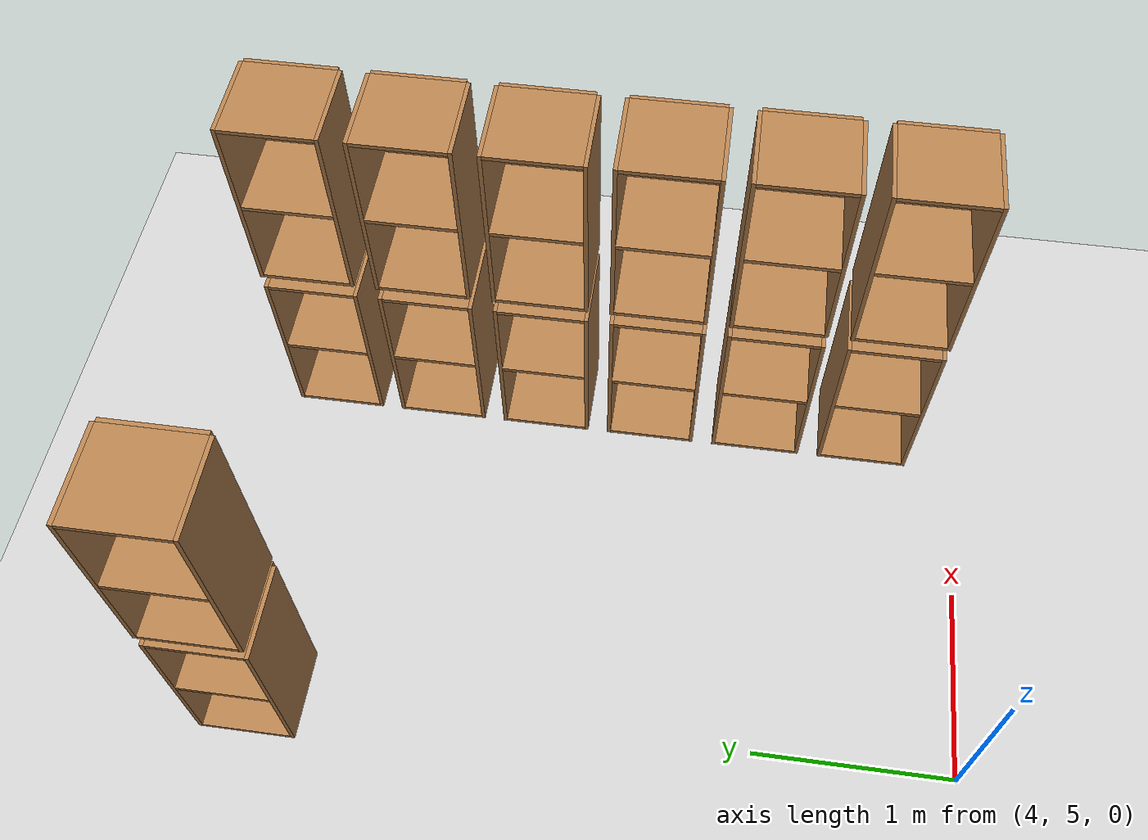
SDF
<sdf version="1.7">
 <world name="default">
  <model name="ground_plane">
   <static>1</static>
   <link name="link">
    <collision name="collision">
     <geometry><plane><normal>0 0 1</normal><size>100 100</size></plane></geometry>
     <surface><friction><ode><mu>100</mu><mu2>50</mu2></ode></friction></surface>
    </collision>
    <visual name="visual">
     <cast_shadows>0</cast_shadows>
     <geometry><plane><normal>0 0 1</normal><size>100 100</size></plane></geometry>
     <material>
      <script><uri>file://media/materials/scripts/gazebo.material</uri><name>Gazebo/Grey</name></script>
     </material>
    </visual>
   </link>
  </model>
  <model name="cabinet_11">
   <static>1</static>
   <link name="cabinet_bottom_plate">
    <inertial>
     <pose>0 0 -1 0 -0 0</pose>
     <inertia><ixx>2.05</ixx><ixy>0</ixy><ixz>0</ixz><iyy>2.05</iyy><iyz>0</iyz><izz>2.05</izz></inertia>
     <mass>25</mass>
    </inertial>
    <collision name="cabinet_bottom_plate_geom">
     <pose>0 0 0.01 0 -0 0</pose>
     <geometry><box><size>0.45 0.45 0.02</size></box></geometry>
    </collision>
    <visual name="cabinet_bottom_plate_geom_visual">
     <pose>0 0 0.01 0 -0 0</pose>
     <geometry><box><size>0.45 0.45 0.02</size></box></geometry>
     <material>
      <script><uri>file://media/materials/scripts/gazebo.material</uri><name>Gazebo/Wood</name></script>
     </material>
    </visual>
    <collision name="cabinet_bottom_plate_geom_cabinet_back_plate">
     <pose>0.235 0 0.51 0 -0 0</pose>
     <geometry><box><size>0.02 0.45 1.02</size></box></geometry>
    </collision>
    <visual name="cabinet_bottom_plate_geom_cabinet_back_plate_visual">
     <pose>0.235 0 0.51 0 -0 0</pose>
     <geometry><box><size>0.02 0.45 1.02</size></box></geometry>
     <material>
      <script><uri>file://media/materials/scripts/gazebo.material</uri><name>Gazebo/Wood</name></script>
     </material>
    </visual>
    <collision name="cabinet_bottom_plate_geom_cabinet_left_plate">
     <pose>0 0.235 0.51 0 -0 0</pose>
     <geometry><box><size>0.45 0.02 1.02</size></box></geometry>
    </collision>
    <visual name="cabinet_bottom_plate_geom_cabinet_left_plate_visual">
     <pose>0 0.235 0.51 0 -0 0</pose>
     <geometry><box><size>0.45 0.02 1.02</size></box></geometry>
     <material>
      <script><uri>file://media/materials/scripts/gazebo.material</uri><name>Gazebo/Wood</name></script>
     </material>
    </visual>
    <collision name="cabinet_bottom_plate_geom_cabinet_middle_plate">
     <pose>0 0 0.51 0 -0 0</pose>
     <geometry><box><size>0.45 0.45 0.02</size></box></geometry>
    </collision>
    <visual name="cabinet_bottom_plate_geom_cabinet_middle_plate_visual">
     <pose>0 0 0.51 0 -0 0</pose>
     <geometry><box><size>0.45 0.45 0.02</size></box></geometry>
     <material>
      <script><uri>file://media/materials/scripts/gazebo.material</uri><name>Gazebo/Wood</name></script>
     </material>
    </visual>
    <collision name="cabinet_bottom_plate_geom_cabinet_right_plate">
     <pose>0 -0.235 0.51 0 -0 0</pose>
     <geometry><box><size>0.45 0.02 1.02</size></box></geometry>
    </collision>
    <visual name="cabinet_bottom_plate_geom_cabinet_right_plate_visual">
     <pose>0 -0.235 0.51 0 -0 0</pose>
     <geometry><box><size>0.45 0.02 1.02</size></box></geometry>
     <material>
      <script><uri>file://media/materials/scripts/gazebo.material</uri><name>Gazebo/Wood</name></script>
     </material>
    </visual>
    <collision name="cabinet_bottom_plate_geom_cabinet_top_plate">
     <pose>0 0 1.01 0 -0 0</pose>
     <geometry><box><size>0.45 0.45 0.02</size></box></geometry>
    </collision>
    <visual name="cabinet_bottom_plate_geom_cabinet_top_plate_visual">
     <pose>0 0 1.01 0 -0 0</pose>
     <geometry><box><size>0.45 0.45 0.02</size></box></geometry>
     <material>
      <script><uri>file://media/materials/scripts/gazebo.material</uri><name>Gazebo/Wood</name></script>
     </material>
    </visual>
   </link>
   <pose>4 8.5 0 0 -0 0</pose>
  </model>
  <model name="cabinet_62">
   <static>1</static>
   <link name="cabinet_bottom_plate">
    <inertial>
     <pose>0 0 -1 0 -0 0</pose>
     <inertia><ixx>2.05</ixx><ixy>0</ixy><ixz>0</ixz><iyy>2.05</iyy><iyz>0</iyz><izz>2.05</izz></inertia>
     <mass>25</mass>
    </inertial>
    <collision name="cabinet_bottom_plate_geom">
     <pose>0 0 0.01 0 -0 0</pose>
     <geometry><box><size>0.45 0.45 0.02</size></box></geometry>
    </collision>
    <visual name="cabinet_bottom_plate_geom_visual">
     <pose>0 0 0.01 0 -0 0</pose>
     <geometry><box><size>0.45 0.45 0.02</size></box></geometry>
     <material>
      <script><uri>file://media/materials/scripts/gazebo.material</uri><name>Gazebo/Wood</name></script>
     </material>
    </visual>
    <collision name="cabinet_bottom_plate_geom_cabinet_back_plate">
     <pose>0.235 0 0.51 0 -0 0</pose>
     <geometry><box><size>0.02 0.45 1.02</size></box></geometry>
    </collision>
    <visual name="cabinet_bottom_plate_geom_cabinet_back_plate_visual">
     <pose>0.235 0 0.51 0 -0 0</pose>
     <geometry><box><size>0.02 0.45 1.02</size></box></geometry>
     <material>
      <script><uri>file://media/materials/scripts/gazebo.material</uri><name>Gazebo/Wood</name></script>
     </material>
    </visual>
    <collision name="cabinet_bottom_plate_geom_cabinet_left_plate">
     <pose>0 0.235 0.51 0 -0 0</pose>
     <geometry><box><size>0.45 0.02 1.02</size></box></geometry>
    </collision>
    <visual name="cabinet_bottom_plate_geom_cabinet_left_plate_visual">
     <pose>0 0.235 0.51 0 -0 0</pose>
     <geometry><box><size>0.45 0.02 1.02</size></box></geometry>
     <material>
      <script><uri>file://media/materials/scripts/gazebo.material</uri><name>Gazebo/Wood</name></script>
     </material>
    </visual>
    <collision name="cabinet_bottom_plate_geom_cabinet_middle_plate">
     <pose>0 0 0.51 0 -0 0</pose>
     <geometry><box><size>0.45 0.45 0.02</size></box></geometry>
    </collision>
    <visual name="cabinet_bottom_plate_geom_cabinet_middle_plate_visual">
     <pose>0 0 0.51 0 -0 0</pose>
     <geometry><box><size>0.45 0.45 0.02</size></box></geometry>
     <material>
      <script><uri>file://media/materials/scripts/gazebo.material</uri><name>Gazebo/Wood</name></script>
     </material>
    </visual>
    <collision name="cabinet_bottom_plate_geom_cabinet_right_plate">
     <pose>0 -0.235 0.51 0 -0 0</pose>
     <geometry><box><size>0.45 0.02 1.02</size></box></geometry>
    </collision>
    <visual name="cabinet_bottom_plate_geom_cabinet_right_plate_visual">
     <pose>0 -0.235 0.51 0 -0 0</pose>
     <geometry><box><size>0.45 0.02 1.02</size></box></geometry>
     <material>
      <script><uri>file://media/materials/scripts/gazebo.material</uri><name>Gazebo/Wood</name></script>
     </material>
    </visual>
    <collision name="cabinet_bottom_plate_geom_cabinet_top_plate">
     <pose>0 0 1.01 0 -0 0</pose>
     <geometry><box><size>0.45 0.45 0.02</size></box></geometry>
    </collision>
    <visual name="cabinet_bottom_plate_geom_cabinet_top_plate_visual">
     <pose>0 0 1.01 0 -0 0</pose>
     <geometry><box><size>0.45 0.45 0.02</size></box></geometry>
     <material>
      <script><uri>file://media/materials/scripts/gazebo.material</uri><name>Gazebo/Wood</name></script>
     </material>
    </visual>
   </link>
   <pose>6 5.5 0 0 -0 0</pose>
  </model>
  <model name="cabinet_63">
   <static>1</static>
   <link name="cabinet_bottom_plate">
    <inertial>
     <pose>0 0 -1 0 -0 0</pose>
     <inertia><ixx>2.05</ixx><ixy>0</ixy><ixz>0</ixz><iyy>2.05</iyy><iyz>0</iyz><izz>2.05</izz></inertia>
     <mass>25</mass>
    </inertial>
    <collision name="cabinet_bottom_plate_geom">
     <pose>0 0 0.01 0 -0 0</pose>
     <geometry><box><size>0.45 0.45 0.02</size></box></geometry>
    </collision>
    <visual name="cabinet_bottom_plate_geom_visual">
     <pose>0 0 0.01 0 -0 0</pose>
     <geometry><box><size>0.45 0.45 0.02</size></box></geometry>
     <material>
      <script><uri>file://media/materials/scripts/gazebo.material</uri><name>Gazebo/Wood</name></script>
     </material>
    </visual>
    <collision name="cabinet_bottom_plate_geom_cabinet_back_plate">
     <pose>0.235 0 0.51 0 -0 0</pose>
     <geometry><box><size>0.02 0.45 1.02</size></box></geometry>
    </collision>
    <visual name="cabinet_bottom_plate_geom_cabinet_back_plate_visual">
     <pose>0.235 0 0.51 0 -0 0</pose>
     <geometry><box><size>0.02 0.45 1.02</size></box></geometry>
     <material>
      <script><uri>file://media/materials/scripts/gazebo.material</uri><name>Gazebo/Wood</name></script>
     </material>
    </visual>
    <collision name="cabinet_bottom_plate_geom_cabinet_left_plate">
     <pose>0 0.235 0.51 0 -0 0</pose>
     <geometry><box><size>0.45 0.02 1.02</size></box></geometry>
    </collision>
    <visual name="cabinet_bottom_plate_geom_cabinet_left_plate_visual">
     <pose>0 0.235 0.51 0 -0 0</pose>
     <geometry><box><size>0.45 0.02 1.02</size></box></geometry>
     <material>
      <script><uri>file://media/materials/scripts/gazebo.material</uri><name>Gazebo/Wood</name></script>
     </material>
    </visual>
    <collision name="cabinet_bottom_plate_geom_cabinet_middle_plate">
     <pose>0 0 0.51 0 -0 0</pose>
     <geometry><box><size>0.45 0.45 0.02</size></box></geometry>
    </collision>
    <visual name="cabinet_bottom_plate_geom_cabinet_middle_plate_visual">
     <pose>0 0 0.51 0 -0 0</pose>
     <geometry><box><size>0.45 0.45 0.02</size></box></geometry>
     <material>
      <script><uri>file://media/materials/scripts/gazebo.material</uri><name>Gazebo/Wood</name></script>
     </material>
    </visual>
    <collision name="cabinet_bottom_plate_geom_cabinet_right_plate">
     <pose>0 -0.235 0.51 0 -0 0</pose>
     <geometry><box><size>0.45 0.02 1.02</size></box></geometry>
    </collision>
    <visual name="cabinet_bottom_plate_geom_cabinet_right_plate_visual">
     <pose>0 -0.235 0.51 0 -0 0</pose>
     <geometry><box><size>0.45 0.02 1.02</size></box></geometry>
     <material>
      <script><uri>file://media/materials/scripts/gazebo.material</uri><name>Gazebo/Wood</name></script>
     </material>
    </visual>
    <collision name="cabinet_bottom_plate_geom_cabinet_top_plate">
     <pose>0 0 1.01 0 -0 0</pose>
     <geometry><box><size>0.45 0.45 0.02</size></box></geometry>
    </collision>
    <visual name="cabinet_bottom_plate_geom_cabinet_top_plate_visual">
     <pose>0 0 1.01 0 -0 0</pose>
     <geometry><box><size>0.45 0.45 0.02</size></box></geometry>
     <material>
      <script><uri>file://media/materials/scripts/gazebo.material</uri><name>Gazebo/Wood</name></script>
     </material>
    </visual>
   </link>
   <pose>6 6.1 0 0 -0 0</pose>
  </model>
  <model name="cabinet_64">
   <static>1</static>
   <link name="cabinet_bottom_plate">
    <inertial>
     <pose>0 0 -1 0 -0 0</pose>
     <inertia><ixx>2.05</ixx><ixy>0</ixy><ixz>0</ixz><iyy>2.05</iyy><iyz>0</iyz><izz>2.05</izz></inertia>
     <mass>25</mass>
    </inertial>
    <collision name="cabinet_bottom_plate_geom">
     <pose>0 0 0.01 0 -0 0</pose>
     <geometry><box><size>0.45 0.45 0.02</size></box></geometry>
    </collision>
    <visual name="cabinet_bottom_plate_geom_visual">
     <pose>0 0 0.01 0 -0 0</pose>
     <geometry><box><size>0.45 0.45 0.02</size></box></geometry>
     <material>
      <script><uri>file://media/materials/scripts/gazebo.material</uri><name>Gazebo/Wood</name></script>
     </material>
    </visual>
    <collision name="cabinet_bottom_plate_geom_cabinet_back_plate">
     <pose>0.235 0 0.51 0 -0 0</pose>
     <geometry><box><size>0.02 0.45 1.02</size></box></geometry>
    </collision>
    <visual name="cabinet_bottom_plate_geom_cabinet_back_plate_visual">
     <pose>0.235 0 0.51 0 -0 0</pose>
     <geometry><box><size>0.02 0.45 1.02</size></box></geometry>
     <material>
      <script><uri>file://media/materials/scripts/gazebo.material</uri><name>Gazebo/Wood</name></script>
     </material>
    </visual>
    <collision name="cabinet_bottom_plate_geom_cabinet_left_plate">
     <pose>0 0.235 0.51 0 -0 0</pose>
     <geometry><box><size>0.45 0.02 1.02</size></box></geometry>
    </collision>
    <visual name="cabinet_bottom_plate_geom_cabinet_left_plate_visual">
     <pose>0 0.235 0.51 0 -0 0</pose>
     <geometry><box><size>0.45 0.02 1.02</size></box></geometry>
     <material>
      <script><uri>file://media/materials/scripts/gazebo.material</uri><name>Gazebo/Wood</name></script>
     </material>
    </visual>
    <collision name="cabinet_bottom_plate_geom_cabinet_middle_plate">
     <pose>0 0 0.51 0 -0 0</pose>
     <geometry><box><size>0.45 0.45 0.02</size></box></geometry>
    </collision>
    <visual name="cabinet_bottom_plate_geom_cabinet_middle_plate_visual">
     <pose>0 0 0.51 0 -0 0</pose>
     <geometry><box><size>0.45 0.45 0.02</size></box></geometry>
     <material>
      <script><uri>file://media/materials/scripts/gazebo.material</uri><name>Gazebo/Wood</name></script>
     </material>
    </visual>
    <collision name="cabinet_bottom_plate_geom_cabinet_right_plate">
     <pose>0 -0.235 0.51 0 -0 0</pose>
     <geometry><box><size>0.45 0.02 1.02</size></box></geometry>
    </collision>
    <visual name="cabinet_bottom_plate_geom_cabinet_right_plate_visual">
     <pose>0 -0.235 0.51 0 -0 0</pose>
     <geometry><box><size>0.45 0.02 1.02</size></box></geometry>
     <material>
      <script><uri>file://media/materials/scripts/gazebo.material</uri><name>Gazebo/Wood</name></script>
     </material>
    </visual>
    <collision name="cabinet_bottom_plate_geom_cabinet_top_plate">
     <pose>0 0 1.01 0 -0 0</pose>
     <geometry><box><size>0.45 0.45 0.02</size></box></geometry>
    </collision>
    <visual name="cabinet_bottom_plate_geom_cabinet_top_plate_visual">
     <pose>0 0 1.01 0 -0 0</pose>
     <geometry><box><size>0.45 0.45 0.02</size></box></geometry>
     <material>
      <script><uri>file://media/materials/scripts/gazebo.material</uri><name>Gazebo/Wood</name></script>
     </material>
    </visual>
   </link>
   <pose>6 6.7 0 0 -0 0</pose>
  </model>
  <model name="cabinet_65">
   <static>1</static>
   <link name="cabinet_bottom_plate">
    <inertial>
     <pose>0 0 -1 0 -0 0</pose>
     <inertia><ixx>2.05</ixx><ixy>0</ixy><ixz>0</ixz><iyy>2.05</iyy><iyz>0</iyz><izz>2.05</izz></inertia>
     <mass>25</mass>
    </inertial>
    <collision name="cabinet_bottom_plate_geom">
     <pose>0 0 0.01 0 -0 0</pose>
     <geometry><box><size>0.45 0.45 0.02</size></box></geometry>
    </collision>
    <visual name="cabinet_bottom_plate_geom_visual">
     <pose>0 0 0.01 0 -0 0</pose>
     <geometry><box><size>0.45 0.45 0.02</size></box></geometry>
     <material>
      <script><uri>file://media/materials/scripts/gazebo.material</uri><name>Gazebo/Wood</name></script>
     </material>
    </visual>
    <collision name="cabinet_bottom_plate_geom_cabinet_back_plate">
     <pose>0.235 0 0.51 0 -0 0</pose>
     <geometry><box><size>0.02 0.45 1.02</size></box></geometry>
    </collision>
    <visual name="cabinet_bottom_plate_geom_cabinet_back_plate_visual">
     <pose>0.235 0 0.51 0 -0 0</pose>
     <geometry><box><size>0.02 0.45 1.02</size></box></geometry>
     <material>
      <script><uri>file://media/materials/scripts/gazebo.material</uri><name>Gazebo/Wood</name></script>
     </material>
    </visual>
    <collision name="cabinet_bottom_plate_geom_cabinet_left_plate">
     <pose>0 0.235 0.51 0 -0 0</pose>
     <geometry><box><size>0.45 0.02 1.02</size></box></geometry>
    </collision>
    <visual name="cabinet_bottom_plate_geom_cabinet_left_plate_visual">
     <pose>0 0.235 0.51 0 -0 0</pose>
     <geometry><box><size>0.45 0.02 1.02</size></box></geometry>
     <material>
      <script><uri>file://media/materials/scripts/gazebo.material</uri><name>Gazebo/Wood</name></script>
     </material>
    </visual>
    <collision name="cabinet_bottom_plate_geom_cabinet_middle_plate">
     <pose>0 0 0.51 0 -0 0</pose>
     <geometry><box><size>0.45 0.45 0.02</size></box></geometry>
    </collision>
    <visual name="cabinet_bottom_plate_geom_cabinet_middle_plate_visual">
     <pose>0 0 0.51 0 -0 0</pose>
     <geometry><box><size>0.45 0.45 0.02</size></box></geometry>
     <material>
      <script><uri>file://media/materials/scripts/gazebo.material</uri><name>Gazebo/Wood</name></script>
     </material>
    </visual>
    <collision name="cabinet_bottom_plate_geom_cabinet_right_plate">
     <pose>0 -0.235 0.51 0 -0 0</pose>
     <geometry><box><size>0.45 0.02 1.02</size></box></geometry>
    </collision>
    <visual name="cabinet_bottom_plate_geom_cabinet_right_plate_visual">
     <pose>0 -0.235 0.51 0 -0 0</pose>
     <geometry><box><size>0.45 0.02 1.02</size></box></geometry>
     <material>
      <script><uri>file://media/materials/scripts/gazebo.material</uri><name>Gazebo/Wood</name></script>
     </material>
    </visual>
    <collision name="cabinet_bottom_plate_geom_cabinet_top_plate">
     <pose>0 0 1.01 0 -0 0</pose>
     <geometry><box><size>0.45 0.45 0.02</size></box></geometry>
    </collision>
    <visual name="cabinet_bottom_plate_geom_cabinet_top_plate_visual">
     <pose>0 0 1.01 0 -0 0</pose>
     <geometry><box><size>0.45 0.45 0.02</size></box></geometry>
     <material>
      <script><uri>file://media/materials/scripts/gazebo.material</uri><name>Gazebo/Wood</name></script>
     </material>
    </visual>
   </link>
   <pose>6 7.3 0 0 -0 0</pose>
  </model>
  <model name="cabinet_66">
   <static>1</static>
   <link name="cabinet_bottom_plate">
    <inertial>
     <pose>0 0 -1 0 -0 0</pose>
     <inertia><ixx>2.05</ixx><ixy>0</ixy><ixz>0</ixz><iyy>2.05</iyy><iyz>0</iyz><izz>2.05</izz></inertia>
     <mass>25</mass>
    </inertial>
    <collision name="cabinet_bottom_plate_geom">
     <pose>0 0 0.01 0 -0 0</pose>
     <geometry><box><size>0.45 0.45 0.02</size></box></geometry>
    </collision>
    <visual name="cabinet_bottom_plate_geom_visual">
     <pose>0 0 0.01 0 -0 0</pose>
     <geometry><box><size>0.45 0.45 0.02</size></box></geometry>
     <material>
      <script><uri>file://media/materials/scripts/gazebo.material</uri><name>Gazebo/Wood</name></script>
     </material>
    </visual>
    <collision name="cabinet_bottom_plate_geom_cabinet_back_plate">
     <pose>0.235 0 0.51 0 -0 0</pose>
     <geometry><box><size>0.02 0.45 1.02</size></box></geometry>
    </collision>
    <visual name="cabinet_bottom_plate_geom_cabinet_back_plate_visual">
     <pose>0.235 0 0.51 0 -0 0</pose>
     <geometry><box><size>0.02 0.45 1.02</size></box></geometry>
     <material>
      <script><uri>file://media/materials/scripts/gazebo.material</uri><name>Gazebo/Wood</name></script>
     </material>
    </visual>
    <collision name="cabinet_bottom_plate_geom_cabinet_left_plate">
     <pose>0 0.235 0.51 0 -0 0</pose>
     <geometry><box><size>0.45 0.02 1.02</size></box></geometry>
    </collision>
    <visual name="cabinet_bottom_plate_geom_cabinet_left_plate_visual">
     <pose>0 0.235 0.51 0 -0 0</pose>
     <geometry><box><size>0.45 0.02 1.02</size></box></geometry>
     <material>
      <script><uri>file://media/materials/scripts/gazebo.material</uri><name>Gazebo/Wood</name></script>
     </material>
    </visual>
    <collision name="cabinet_bottom_plate_geom_cabinet_middle_plate">
     <pose>0 0 0.51 0 -0 0</pose>
     <geometry><box><size>0.45 0.45 0.02</size></box></geometry>
    </collision>
    <visual name="cabinet_bottom_plate_geom_cabinet_middle_plate_visual">
     <pose>0 0 0.51 0 -0 0</pose>
     <geometry><box><size>0.45 0.45 0.02</size></box></geometry>
     <material>
      <script><uri>file://media/materials/scripts/gazebo.material</uri><name>Gazebo/Wood</name></script>
     </material>
    </visual>
    <collision name="cabinet_bottom_plate_geom_cabinet_right_plate">
     <pose>0 -0.235 0.51 0 -0 0</pose>
     <geometry><box><size>0.45 0.02 1.02</size></box></geometry>
    </collision>
    <visual name="cabinet_bottom_plate_geom_cabinet_right_plate_visual">
     <pose>0 -0.235 0.51 0 -0 0</pose>
     <geometry><box><size>0.45 0.02 1.02</size></box></geometry>
     <material>
      <script><uri>file://media/materials/scripts/gazebo.material</uri><name>Gazebo/Wood</name></script>
     </material>
    </visual>
    <collision name="cabinet_bottom_plate_geom_cabinet_top_plate">
     <pose>0 0 1.01 0 -0 0</pose>
     <geometry><box><size>0.45 0.45 0.02</size></box></geometry>
    </collision>
    <visual name="cabinet_bottom_plate_geom_cabinet_top_plate_visual">
     <pose>0 0 1.01 0 -0 0</pose>
     <geometry><box><size>0.45 0.45 0.02</size></box></geometry>
     <material>
      <script><uri>file://media/materials/scripts/gazebo.material</uri><name>Gazebo/Wood</name></script>
     </material>
    </visual>
   </link>
   <pose>6 7.9 0 0 -0 0</pose>
  </model>
  <model name="cabinet_67">
   <static>1</static>
   <link name="cabinet_bottom_plate">
    <inertial>
     <pose>0 0 -1 0 -0 0</pose>
     <inertia><ixx>2.05</ixx><ixy>0</ixy><ixz>0</ixz><iyy>2.05</iyy><iyz>0</iyz><izz>2.05</izz></inertia>
     <mass>25</mass>
    </inertial>
    <collision name="cabinet_bottom_plate_geom">
     <pose>0 0 0.01 0 -0 0</pose>
     <geometry><box><size>0.45 0.45 0.02</size></box></geometry>
    </collision>
    <visual name="cabinet_bottom_plate_geom_visual">
     <pose>0 0 0.01 0 -0 0</pose>
     <geometry><box><size>0.45 0.45 0.02</size></box></geometry>
     <material>
      <script><uri>file://media/materials/scripts/gazebo.material</uri><name>Gazebo/Wood</name></script>
     </material>
    </visual>
    <collision name="cabinet_bottom_plate_geom_cabinet_back_plate">
     <pose>0.235 0 0.51 0 -0 0</pose>
     <geometry><box><size>0.02 0.45 1.02</size></box></geometry>
    </collision>
    <visual name="cabinet_bottom_plate_geom_cabinet_back_plate_visual">
     <pose>0.235 0 0.51 0 -0 0</pose>
     <geometry><box><size>0.02 0.45 1.02</size></box></geometry>
     <material>
      <script><uri>file://media/materials/scripts/gazebo.material</uri><name>Gazebo/Wood</name></script>
     </material>
    </visual>
    <collision name="cabinet_bottom_plate_geom_cabinet_left_plate">
     <pose>0 0.235 0.51 0 -0 0</pose>
     <geometry><box><size>0.45 0.02 1.02</size></box></geometry>
    </collision>
    <visual name="cabinet_bottom_plate_geom_cabinet_left_plate_visual">
     <pose>0 0.235 0.51 0 -0 0</pose>
     <geometry><box><size>0.45 0.02 1.02</size></box></geometry>
     <material>
      <script><uri>file://media/materials/scripts/gazebo.material</uri><name>Gazebo/Wood</name></script>
     </material>
    </visual>
    <collision name="cabinet_bottom_plate_geom_cabinet_middle_plate">
     <pose>0 0 0.51 0 -0 0</pose>
     <geometry><box><size>0.45 0.45 0.02</size></box></geometry>
    </collision>
    <visual name="cabinet_bottom_plate_geom_cabinet_middle_plate_visual">
     <pose>0 0 0.51 0 -0 0</pose>
     <geometry><box><size>0.45 0.45 0.02</size></box></geometry>
     <material>
      <script><uri>file://media/materials/scripts/gazebo.material</uri><name>Gazebo/Wood</name></script>
     </material>
    </visual>
    <collision name="cabinet_bottom_plate_geom_cabinet_right_plate">
     <pose>0 -0.235 0.51 0 -0 0</pose>
     <geometry><box><size>0.45 0.02 1.02</size></box></geometry>
    </collision>
    <visual name="cabinet_bottom_plate_geom_cabinet_right_plate_visual">
     <pose>0 -0.235 0.51 0 -0 0</pose>
     <geometry><box><size>0.45 0.02 1.02</size></box></geometry>
     <material>
      <script><uri>file://media/materials/scripts/gazebo.material</uri><name>Gazebo/Wood</name></script>
     </material>
    </visual>
    <collision name="cabinet_bottom_plate_geom_cabinet_top_plate">
     <pose>0 0 1.01 0 -0 0</pose>
     <geometry><box><size>0.45 0.45 0.02</size></box></geometry>
    </collision>
    <visual name="cabinet_bottom_plate_geom_cabinet_top_plate_visual">
     <pose>0 0 1.01 0 -0 0</pose>
     <geometry><box><size>0.45 0.45 0.02</size></box></geometry>
     <material>
      <script><uri>file://media/materials/scripts/gazebo.material</uri><name>Gazebo/Wood</name></script>
     </material>
    </visual>
   </link>
   <pose>6 8.5 0 0 -0 0</pose>
  </model>
  <model name="cabinet_68">
   <static>1</static>
   <link name="cabinet_bottom_plate">
    <inertial>
     <pose>0 0 -1 0 -0 0</pose>
     <inertia><ixx>2.05</ixx><ixy>0</ixy><ixz>0</ixz><iyy>2.05</iyy><iyz>0</iyz><izz>2.05</izz></inertia>
     <mass>25</mass>
    </inertial>
    <collision name="cabinet_bottom_plate_geom">
     <pose>0 0 0.01 0 -0 0</pose>
     <geometry><box><size>0.45 0.45 0.02</size></box></geometry>
    </collision>
    <visual name="cabinet_bottom_plate_geom_visual">
     <pose>0 0 0.01 0 -0 0</pose>
     <geometry><box><size>0.45 0.45 0.02</size></box></geometry>
     <material>
      <script><uri>file://media/materials/scripts/gazebo.material</uri><name>Gazebo/Wood</name></script>
     </material>
    </visual>
    <collision name="cabinet_bottom_plate_geom_cabinet_back_plate">
     <pose>0.235 0 0.51 0 -0 0</pose>
     <geometry><box><size>0.02 0.45 1.02</size></box></geometry>
    </collision>
    <visual name="cabinet_bottom_plate_geom_cabinet_back_plate_visual">
     <pose>0.235 0 0.51 0 -0 0</pose>
     <geometry><box><size>0.02 0.45 1.02</size></box></geometry>
     <material>
      <script><uri>file://media/materials/scripts/gazebo.material</uri><name>Gazebo/Wood</name></script>
     </material>
    </visual>
    <collision name="cabinet_bottom_plate_geom_cabinet_left_plate">
     <pose>0 0.235 0.51 0 -0 0</pose>
     <geometry><box><size>0.45 0.02 1.02</size></box></geometry>
    </collision>
    <visual name="cabinet_bottom_plate_geom_cabinet_left_plate_visual">
     <pose>0 0.235 0.51 0 -0 0</pose>
     <geometry><box><size>0.45 0.02 1.02</size></box></geometry>
     <material>
      <script><uri>file://media/materials/scripts/gazebo.material</uri><name>Gazebo/Wood</name></script>
     </material>
    </visual>
    <collision name="cabinet_bottom_plate_geom_cabinet_middle_plate">
     <pose>0 0 0.51 0 -0 0</pose>
     <geometry><box><size>0.45 0.45 0.02</size></box></geometry>
    </collision>
    <visual name="cabinet_bottom_plate_geom_cabinet_middle_plate_visual">
     <pose>0 0 0.51 0 -0 0</pose>
     <geometry><box><size>0.45 0.45 0.02</size></box></geometry>
     <material>
      <script><uri>file://media/materials/scripts/gazebo.material</uri><name>Gazebo/Wood</name></script>
     </material>
    </visual>
    <collision name="cabinet_bottom_plate_geom_cabinet_right_plate">
     <pose>0 -0.235 0.51 0 -0 0</pose>
     <geometry><box><size>0.45 0.02 1.02</size></box></geometry>
    </collision>
    <visual name="cabinet_bottom_plate_geom_cabinet_right_plate_visual">
     <pose>0 -0.235 0.51 0 -0 0</pose>
     <geometry><box><size>0.45 0.02 1.02</size></box></geometry>
     <material>
      <script><uri>file://media/materials/scripts/gazebo.material</uri><name>Gazebo/Wood</name></script>
     </material>
    </visual>
    <collision name="cabinet_bottom_plate_geom_cabinet_top_plate">
     <pose>0 0 1.01 0 -0 0</pose>
     <geometry><box><size>0.45 0.45 0.02</size></box></geometry>
    </collision>
    <visual name="cabinet_bottom_plate_geom_cabinet_top_plate_visual">
     <pose>0 0 1.01 0 -0 0</pose>
     <geometry><box><size>0.45 0.45 0.02</size></box></geometry>
     <material>
      <script><uri>file://media/materials/scripts/gazebo.material</uri><name>Gazebo/Wood</name></script>
     </material>
    </visual>
   </link>
   <pose>6 8.5 1.1 0 -0 0</pose>
  </model>
  <model name="cabinet_70">
   <static>1</static>
   <link name="cabinet_bottom_plate">
    <inertial>
     <pose>0 0 -1 0 -0 0</pose>
     <inertia><ixx>2.05</ixx><ixy>0</ixy><ixz>0</ixz><iyy>2.05</iyy><iyz>0</iyz><izz>2.05</izz></inertia>
     <mass>25</mass>
    </inertial>
    <collision name="cabinet_bottom_plate_geom">
     <pose>0 0 0.01 0 -0 0</pose>
     <geometry><box><size>0.45 0.45 0.02</size></box></geometry>
    </collision>
    <visual name="cabinet_bottom_plate_geom_visual">
     <pose>0 0 0.01 0 -0 0</pose>
     <geometry><box><size>0.45 0.45 0.02</size></box></geometry>
     <material>
      <script><uri>file://media/materials/scripts/gazebo.material</uri><name>Gazebo/Wood</name></script>
     </material>
    </visual>
    <collision name="cabinet_bottom_plate_geom_cabinet_back_plate">
     <pose>0.235 0 0.51 0 -0 0</pose>
     <geometry><box><size>0.02 0.45 1.02</size></box></geometry>
    </collision>
    <visual name="cabinet_bottom_plate_geom_cabinet_back_plate_visual">
     <pose>0.235 0 0.51 0 -0 0</pose>
     <geometry><box><size>0.02 0.45 1.02</size></box></geometry>
     <material>
      <script><uri>file://media/materials/scripts/gazebo.material</uri><name>Gazebo/Wood</name></script>
     </material>
    </visual>
    <collision name="cabinet_bottom_plate_geom_cabinet_left_plate">
     <pose>0 0.235 0.51 0 -0 0</pose>
     <geometry><box><size>0.45 0.02 1.02</size></box></geometry>
    </collision>
    <visual name="cabinet_bottom_plate_geom_cabinet_left_plate_visual">
     <pose>0 0.235 0.51 0 -0 0</pose>
     <geometry><box><size>0.45 0.02 1.02</size></box></geometry>
     <material>
      <script><uri>file://media/materials/scripts/gazebo.material</uri><name>Gazebo/Wood</name></script>
     </material>
    </visual>
    <collision name="cabinet_bottom_plate_geom_cabinet_middle_plate">
     <pose>0 0 0.51 0 -0 0</pose>
     <geometry><box><size>0.45 0.45 0.02</size></box></geometry>
    </collision>
    <visual name="cabinet_bottom_plate_geom_cabinet_middle_plate_visual">
     <pose>0 0 0.51 0 -0 0</pose>
     <geometry><box><size>0.45 0.45 0.02</size></box></geometry>
     <material>
      <script><uri>file://media/materials/scripts/gazebo.material</uri><name>Gazebo/Wood</name></script>
     </material>
    </visual>
    <collision name="cabinet_bottom_plate_geom_cabinet_right_plate">
     <pose>0 -0.235 0.51 0 -0 0</pose>
     <geometry><box><size>0.45 0.02 1.02</size></box></geometry>
    </collision>
    <visual name="cabinet_bottom_plate_geom_cabinet_right_plate_visual">
     <pose>0 -0.235 0.51 0 -0 0</pose>
     <geometry><box><size>0.45 0.02 1.02</size></box></geometry>
     <material>
      <script><uri>file://media/materials/scripts/gazebo.material</uri><name>Gazebo/Wood</name></script>
     </material>
    </visual>
    <collision name="cabinet_bottom_plate_geom_cabinet_top_plate">
     <pose>0 0 1.01 0 -0 0</pose>
     <geometry><box><size>0.45 0.45 0.02</size></box></geometry>
    </collision>
    <visual name="cabinet_bottom_plate_geom_cabinet_top_plate_visual">
     <pose>0 0 1.01 0 -0 0</pose>
     <geometry><box><size>0.45 0.45 0.02</size></box></geometry>
     <material>
      <script><uri>file://media/materials/scripts/gazebo.material</uri><name>Gazebo/Wood</name></script>
     </material>
    </visual>
   </link>
   <pose>6 5.5 1.1 0 -0 0</pose>
  </model>
  <model name="cabinet_71">
   <static>1</static>
   <link name="cabinet_bottom_plate">
    <inertial>
     <pose>0 0 -1 0 -0 0</pose>
     <inertia><ixx>2.05</ixx><ixy>0</ixy><ixz>0</ixz><iyy>2.05</iyy><iyz>0</iyz><izz>2.05</izz></inertia>
     <mass>25</mass>
    </inertial>
    <collision name="cabinet_bottom_plate_geom">
     <pose>0 0 0.01 0 -0 0</pose>
     <geometry><box><size>0.45 0.45 0.02</size></box></geometry>
    </collision>
    <visual name="cabinet_bottom_plate_geom_visual">
     <pose>0 0 0.01 0 -0 0</pose>
     <geometry><box><size>0.45 0.45 0.02</size></box></geometry>
     <material>
      <script><uri>file://media/materials/scripts/gazebo.material</uri><name>Gazebo/Wood</name></script>
     </material>
    </visual>
    <collision name="cabinet_bottom_plate_geom_cabinet_back_plate">
     <pose>0.235 0 0.51 0 -0 0</pose>
     <geometry><box><size>0.02 0.45 1.02</size></box></geometry>
    </collision>
    <visual name="cabinet_bottom_plate_geom_cabinet_back_plate_visual">
     <pose>0.235 0 0.51 0 -0 0</pose>
     <geometry><box><size>0.02 0.45 1.02</size></box></geometry>
     <material>
      <script><uri>file://media/materials/scripts/gazebo.material</uri><name>Gazebo/Wood</name></script>
     </material>
    </visual>
    <collision name="cabinet_bottom_plate_geom_cabinet_left_plate">
     <pose>0 0.235 0.51 0 -0 0</pose>
     <geometry><box><size>0.45 0.02 1.02</size></box></geometry>
    </collision>
    <visual name="cabinet_bottom_plate_geom_cabinet_left_plate_visual">
     <pose>0 0.235 0.51 0 -0 0</pose>
     <geometry><box><size>0.45 0.02 1.02</size></box></geometry>
     <material>
      <script><uri>file://media/materials/scripts/gazebo.material</uri><name>Gazebo/Wood</name></script>
     </material>
    </visual>
    <collision name="cabinet_bottom_plate_geom_cabinet_middle_plate">
     <pose>0 0 0.51 0 -0 0</pose>
     <geometry><box><size>0.45 0.45 0.02</size></box></geometry>
    </collision>
    <visual name="cabinet_bottom_plate_geom_cabinet_middle_plate_visual">
     <pose>0 0 0.51 0 -0 0</pose>
     <geometry><box><size>0.45 0.45 0.02</size></box></geometry>
     <material>
      <script><uri>file://media/materials/scripts/gazebo.material</uri><name>Gazebo/Wood</name></script>
     </material>
    </visual>
    <collision name="cabinet_bottom_plate_geom_cabinet_right_plate">
     <pose>0 -0.235 0.51 0 -0 0</pose>
     <geometry><box><size>0.45 0.02 1.02</size></box></geometry>
    </collision>
    <visual name="cabinet_bottom_plate_geom_cabinet_right_plate_visual">
     <pose>0 -0.235 0.51 0 -0 0</pose>
     <geometry><box><size>0.45 0.02 1.02</size></box></geometry>
     <material>
      <script><uri>file://media/materials/scripts/gazebo.material</uri><name>Gazebo/Wood</name></script>
     </material>
    </visual>
    <collision name="cabinet_bottom_plate_geom_cabinet_top_plate">
     <pose>0 0 1.01 0 -0 0</pose>
     <geometry><box><size>0.45 0.45 0.02</size></box></geometry>
    </collision>
    <visual name="cabinet_bottom_plate_geom_cabinet_top_plate_visual">
     <pose>0 0 1.01 0 -0 0</pose>
     <geometry><box><size>0.45 0.45 0.02</size></box></geometry>
     <material>
      <script><uri>file://media/materials/scripts/gazebo.material</uri><name>Gazebo/Wood</name></script>
     </material>
    </visual>
   </link>
   <pose>6 7.9 1.1 0 -0 0</pose>
  </model>
  <model name="cabinet_72">
   <static>1</static>
   <link name="cabinet_bottom_plate">
    <inertial>
     <pose>0 0 -1 0 -0 0</pose>
     <inertia><ixx>2.05</ixx><ixy>0</ixy><ixz>0</ixz><iyy>2.05</iyy><iyz>0</iyz><izz>2.05</izz></inertia>
     <mass>25</mass>
    </inertial>
    <collision name="cabinet_bottom_plate_geom">
     <pose>0 0 0.01 0 -0 0</pose>
     <geometry><box><size>0.45 0.45 0.02</size></box></geometry>
    </collision>
    <visual name="cabinet_bottom_plate_geom_visual">
     <pose>0 0 0.01 0 -0 0</pose>
     <geometry><box><size>0.45 0.45 0.02</size></box></geometry>
     <material>
      <script><uri>file://media/materials/scripts/gazebo.material</uri><name>Gazebo/Wood</name></script>
     </material>
    </visual>
    <collision name="cabinet_bottom_plate_geom_cabinet_back_plate">
     <pose>0.235 0 0.51 0 -0 0</pose>
     <geometry><box><size>0.02 0.45 1.02</size></box></geometry>
    </collision>
    <visual name="cabinet_bottom_plate_geom_cabinet_back_plate_visual">
     <pose>0.235 0 0.51 0 -0 0</pose>
     <geometry><box><size>0.02 0.45 1.02</size></box></geometry>
     <material>
      <script><uri>file://media/materials/scripts/gazebo.material</uri><name>Gazebo/Wood</name></script>
     </material>
    </visual>
    <collision name="cabinet_bottom_plate_geom_cabinet_left_plate">
     <pose>0 0.235 0.51 0 -0 0</pose>
     <geometry><box><size>0.45 0.02 1.02</size></box></geometry>
    </collision>
    <visual name="cabinet_bottom_plate_geom_cabinet_left_plate_visual">
     <pose>0 0.235 0.51 0 -0 0</pose>
     <geometry><box><size>0.45 0.02 1.02</size></box></geometry>
     <material>
      <script><uri>file://media/materials/scripts/gazebo.material</uri><name>Gazebo/Wood</name></script>
     </material>
    </visual>
    <collision name="cabinet_bottom_plate_geom_cabinet_middle_plate">
     <pose>0 0 0.51 0 -0 0</pose>
     <geometry><box><size>0.45 0.45 0.02</size></box></geometry>
    </collision>
    <visual name="cabinet_bottom_plate_geom_cabinet_middle_plate_visual">
     <pose>0 0 0.51 0 -0 0</pose>
     <geometry><box><size>0.45 0.45 0.02</size></box></geometry>
     <material>
      <script><uri>file://media/materials/scripts/gazebo.material</uri><name>Gazebo/Wood</name></script>
     </material>
    </visual>
    <collision name="cabinet_bottom_plate_geom_cabinet_right_plate">
     <pose>0 -0.235 0.51 0 -0 0</pose>
     <geometry><box><size>0.45 0.02 1.02</size></box></geometry>
    </collision>
    <visual name="cabinet_bottom_plate_geom_cabinet_right_plate_visual">
     <pose>0 -0.235 0.51 0 -0 0</pose>
     <geometry><box><size>0.45 0.02 1.02</size></box></geometry>
     <material>
      <script><uri>file://media/materials/scripts/gazebo.material</uri><name>Gazebo/Wood</name></script>
     </material>
    </visual>
    <collision name="cabinet_bottom_plate_geom_cabinet_top_plate">
     <pose>0 0 1.01 0 -0 0</pose>
     <geometry><box><size>0.45 0.45 0.02</size></box></geometry>
    </collision>
    <visual name="cabinet_bottom_plate_geom_cabinet_top_plate_visual">
     <pose>0 0 1.01 0 -0 0</pose>
     <geometry><box><size>0.45 0.45 0.02</size></box></geometry>
     <material>
      <script><uri>file://media/materials/scripts/gazebo.material</uri><name>Gazebo/Wood</name></script>
     </material>
    </visual>
   </link>
   <pose>6 7.3 1.1 0 -0 0</pose>
  </model>
  <model name="cabinet_73">
   <static>1</static>
   <link name="cabinet_bottom_plate">
    <inertial>
     <pose>0 0 -1 0 -0 0</pose>
     <inertia><ixx>2.05</ixx><ixy>0</ixy><ixz>0</ixz><iyy>2.05</iyy><iyz>0</iyz><izz>2.05</izz></inertia>
     <mass>25</mass>
    </inertial>
    <collision name="cabinet_bottom_plate_geom">
     <pose>0 0 0.01 0 -0 0</pose>
     <geometry><box><size>0.45 0.45 0.02</size></box></geometry>
    </collision>
    <visual name="cabinet_bottom_plate_geom_visual">
     <pose>0 0 0.01 0 -0 0</pose>
     <geometry><box><size>0.45 0.45 0.02</size></box></geometry>
     <material>
      <script><uri>file://media/materials/scripts/gazebo.material</uri><name>Gazebo/Wood</name></script>
     </material>
    </visual>
    <collision name="cabinet_bottom_plate_geom_cabinet_back_plate">
     <pose>0.235 0 0.51 0 -0 0</pose>
     <geometry><box><size>0.02 0.45 1.02</size></box></geometry>
    </collision>
    <visual name="cabinet_bottom_plate_geom_cabinet_back_plate_visual">
     <pose>0.235 0 0.51 0 -0 0</pose>
     <geometry><box><size>0.02 0.45 1.02</size></box></geometry>
     <material>
      <script><uri>file://media/materials/scripts/gazebo.material</uri><name>Gazebo/Wood</name></script>
     </material>
    </visual>
    <collision name="cabinet_bottom_plate_geom_cabinet_left_plate">
     <pose>0 0.235 0.51 0 -0 0</pose>
     <geometry><box><size>0.45 0.02 1.02</size></box></geometry>
    </collision>
    <visual name="cabinet_bottom_plate_geom_cabinet_left_plate_visual">
     <pose>0 0.235 0.51 0 -0 0</pose>
     <geometry><box><size>0.45 0.02 1.02</size></box></geometry>
     <material>
      <script><uri>file://media/materials/scripts/gazebo.material</uri><name>Gazebo/Wood</name></script>
     </material>
    </visual>
    <collision name="cabinet_bottom_plate_geom_cabinet_middle_plate">
     <pose>0 0 0.51 0 -0 0</pose>
     <geometry><box><size>0.45 0.45 0.02</size></box></geometry>
    </collision>
    <visual name="cabinet_bottom_plate_geom_cabinet_middle_plate_visual">
     <pose>0 0 0.51 0 -0 0</pose>
     <geometry><box><size>0.45 0.45 0.02</size></box></geometry>
     <material>
      <script><uri>file://media/materials/scripts/gazebo.material</uri><name>Gazebo/Wood</name></script>
     </material>
    </visual>
    <collision name="cabinet_bottom_plate_geom_cabinet_right_plate">
     <pose>0 -0.235 0.51 0 -0 0</pose>
     <geometry><box><size>0.45 0.02 1.02</size></box></geometry>
    </collision>
    <visual name="cabinet_bottom_plate_geom_cabinet_right_plate_visual">
     <pose>0 -0.235 0.51 0 -0 0</pose>
     <geometry><box><size>0.45 0.02 1.02</size></box></geometry>
     <material>
      <script><uri>file://media/materials/scripts/gazebo.material</uri><name>Gazebo/Wood</name></script>
     </material>
    </visual>
    <collision name="cabinet_bottom_plate_geom_cabinet_top_plate">
     <pose>0 0 1.01 0 -0 0</pose>
     <geometry><box><size>0.45 0.45 0.02</size></box></geometry>
    </collision>
    <visual name="cabinet_bottom_plate_geom_cabinet_top_plate_visual">
     <pose>0 0 1.01 0 -0 0</pose>
     <geometry><box><size>0.45 0.45 0.02</size></box></geometry>
     <material>
      <script><uri>file://media/materials/scripts/gazebo.material</uri><name>Gazebo/Wood</name></script>
     </material>
    </visual>
   </link>
   <pose>6 6.7 1.1 0 -0 0</pose>
  </model>
  <model name="cabinet_90">
   <static>1</static>
   <link name="cabinet_bottom_plate">
    <inertial>
     <pose>0 0 -1 0 -0 0</pose>
     <inertia><ixx>2.05</ixx><ixy>0</ixy><ixz>0</ixz><iyy>2.05</iyy><iyz>0</iyz><izz>2.05</izz></inertia>
     <mass>25</mass>
    </inertial>
    <collision name="cabinet_bottom_plate_geom">
     <pose>0 0 0.01 0 -0 0</pose>
     <geometry><box><size>0.45 0.45 0.02</size></box></geometry>
    </collision>
    <visual name="cabinet_bottom_plate_geom_visual">
     <pose>0 0 0.01 0 -0 0</pose>
     <geometry><box><size>0.45 0.45 0.02</size></box></geometry>
     <material>
      <script><uri>file://media/materials/scripts/gazebo.material</uri><name>Gazebo/Wood</name></script>
     </material>
    </visual>
    <collision name="cabinet_bottom_plate_geom_cabinet_back_plate">
     <pose>0.235 0 0.51 0 -0 0</pose>
     <geometry><box><size>0.02 0.45 1.02</size></box></geometry>
    </collision>
    <visual name="cabinet_bottom_plate_geom_cabinet_back_plate_visual">
     <pose>0.235 0 0.51 0 -0 0</pose>
     <geometry><box><size>0.02 0.45 1.02</size></box></geometry>
     <material>
      <script><uri>file://media/materials/scripts/gazebo.material</uri><name>Gazebo/Wood</name></script>
     </material>
    </visual>
    <collision name="cabinet_bottom_plate_geom_cabinet_left_plate">
     <pose>0 0.235 0.51 0 -0 0</pose>
     <geometry><box><size>0.45 0.02 1.02</size></box></geometry>
    </collision>
    <visual name="cabinet_bottom_plate_geom_cabinet_left_plate_visual">
     <pose>0 0.235 0.51 0 -0 0</pose>
     <geometry><box><size>0.45 0.02 1.02</size></box></geometry>
     <material>
      <script><uri>file://media/materials/scripts/gazebo.material</uri><name>Gazebo/Wood</name></script>
     </material>
    </visual>
    <collision name="cabinet_bottom_plate_geom_cabinet_middle_plate">
     <pose>0 0 0.51 0 -0 0</pose>
     <geometry><box><size>0.45 0.45 0.02</size></box></geometry>
    </collision>
    <visual name="cabinet_bottom_plate_geom_cabinet_middle_plate_visual">
     <pose>0 0 0.51 0 -0 0</pose>
     <geometry><box><size>0.45 0.45 0.02</size></box></geometry>
     <material>
      <script><uri>file://media/materials/scripts/gazebo.material</uri><name>Gazebo/Wood</name></script>
     </material>
    </visual>
    <collision name="cabinet_bottom_plate_geom_cabinet_right_plate">
     <pose>0 -0.235 0.51 0 -0 0</pose>
     <geometry><box><size>0.45 0.02 1.02</size></box></geometry>
    </collision>
    <visual name="cabinet_bottom_plate_geom_cabinet_right_plate_visual">
     <pose>0 -0.235 0.51 0 -0 0</pose>
     <geometry><box><size>0.45 0.02 1.02</size></box></geometry>
     <material>
      <script><uri>file://media/materials/scripts/gazebo.material</uri><name>Gazebo/Wood</name></script>
     </material>
    </visual>
    <collision name="cabinet_bottom_plate_geom_cabinet_top_plate">
     <pose>0 0 1.01 0 -0 0</pose>
     <geometry><box><size>0.45 0.45 0.02</size></box></geometry>
    </collision>
    <visual name="cabinet_bottom_plate_geom_cabinet_top_plate_visual">
     <pose>0 0 1.01 0 -0 0</pose>
     <geometry><box><size>0.45 0.45 0.02</size></box></geometry>
     <material>
      <script><uri>file://media/materials/scripts/gazebo.material</uri><name>Gazebo/Wood</name></script>
     </material>
    </visual>
   </link>
   <pose>4 8.5 1.1 0 -0 0</pose>
  </model>
  <model name="cabinet_96">
   <static>1</static>
   <link name="cabinet_bottom_plate">
    <inertial>
     <pose>0 0 -1 0 -0 0</pose>
     <inertia><ixx>2.05</ixx><ixy>0</ixy><ixz>0</ixz><iyy>2.05</iyy><iyz>0</iyz><izz>2.05</izz></inertia>
     <mass>25</mass>
    </inertial>
    <collision name="cabinet_bottom_plate_geom">
     <pose>0 0 0.01 0 -0 0</pose>
     <geometry><box><size>0.45 0.45 0.02</size></box></geometry>
    </collision>
    <visual name="cabinet_bottom_plate_geom_visual">
     <pose>0 0 0.01 0 -0 0</pose>
     <geometry><box><size>0.45 0.45 0.02</size></box></geometry>
     <material>
      <script><uri>file://media/materials/scripts/gazebo.material</uri><name>Gazebo/Wood</name></script>
     </material>
    </visual>
    <collision name="cabinet_bottom_plate_geom_cabinet_back_plate">
     <pose>0.235 0 0.51 0 -0 0</pose>
     <geometry><box><size>0.02 0.45 1.02</size></box></geometry>
    </collision>
    <visual name="cabinet_bottom_plate_geom_cabinet_back_plate_visual">
     <pose>0.235 0 0.51 0 -0 0</pose>
     <geometry><box><size>0.02 0.45 1.02</size></box></geometry>
     <material>
      <script><uri>file://media/materials/scripts/gazebo.material</uri><name>Gazebo/Wood</name></script>
     </material>
    </visual>
    <collision name="cabinet_bottom_plate_geom_cabinet_left_plate">
     <pose>0 0.235 0.51 0 -0 0</pose>
     <geometry><box><size>0.45 0.02 1.02</size></box></geometry>
    </collision>
    <visual name="cabinet_bottom_plate_geom_cabinet_left_plate_visual">
     <pose>0 0.235 0.51 0 -0 0</pose>
     <geometry><box><size>0.45 0.02 1.02</size></box></geometry>
     <material>
      <script><uri>file://media/materials/scripts/gazebo.material</uri><name>Gazebo/Wood</name></script>
     </material>
    </visual>
    <collision name="cabinet_bottom_plate_geom_cabinet_middle_plate">
     <pose>0 0 0.51 0 -0 0</pose>
     <geometry><box><size>0.45 0.45 0.02</size></box></geometry>
    </collision>
    <visual name="cabinet_bottom_plate_geom_cabinet_middle_plate_visual">
     <pose>0 0 0.51 0 -0 0</pose>
     <geometry><box><size>0.45 0.45 0.02</size></box></geometry>
     <material>
      <script><uri>file://media/materials/scripts/gazebo.material</uri><name>Gazebo/Wood</name></script>
     </material>
    </visual>
    <collision name="cabinet_bottom_plate_geom_cabinet_right_plate">
     <pose>0 -0.235 0.51 0 -0 0</pose>
     <geometry><box><size>0.45 0.02 1.02</size></box></geometry>
    </collision>
    <visual name="cabinet_bottom_plate_geom_cabinet_right_plate_visual">
     <pose>0 -0.235 0.51 0 -0 0</pose>
     <geometry><box><size>0.45 0.02 1.02</size></box></geometry>
     <material>
      <script><uri>file://media/materials/scripts/gazebo.material</uri><name>Gazebo/Wood</name></script>
     </material>
    </visual>
    <collision name="cabinet_bottom_plate_geom_cabinet_top_plate">
     <pose>0 0 1.01 0 -0 0</pose>
     <geometry><box><size>0.45 0.45 0.02</size></box></geometry>
    </collision>
    <visual name="cabinet_bottom_plate_geom_cabinet_top_plate_visual">
     <pose>0 0 1.01 0 -0 0</pose>
     <geometry><box><size>0.45 0.45 0.02</size></box></geometry>
     <material>
      <script><uri>file://media/materials/scripts/gazebo.material</uri><name>Gazebo/Wood</name></script>
     </material>
    </visual>
   </link>
   <pose>6 6.1 1.1 0 -0 0</pose>
  </model>
 </world>
</sdf>
